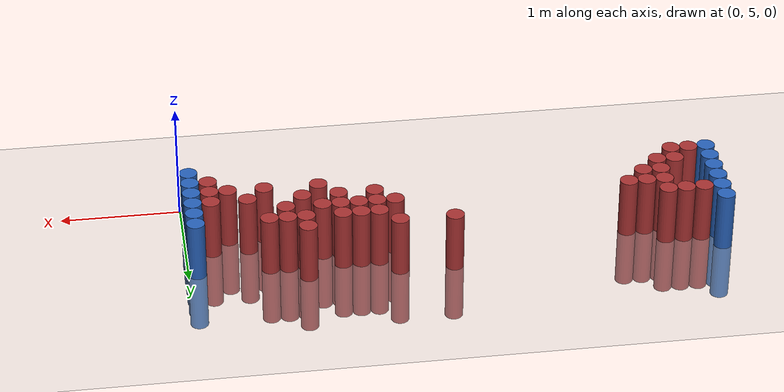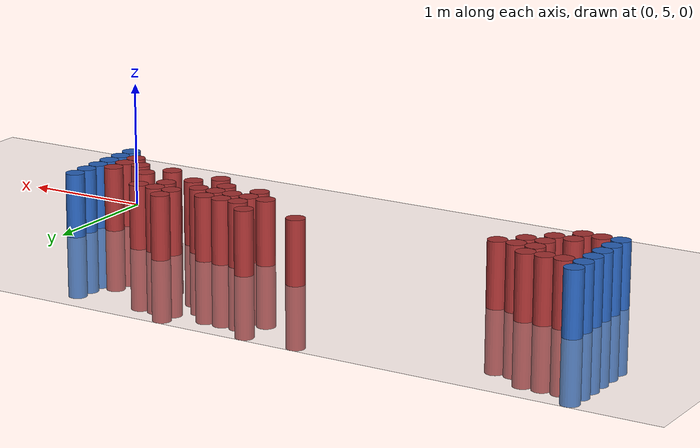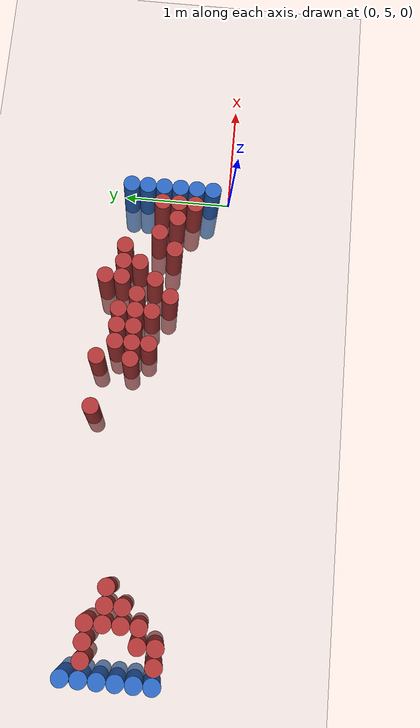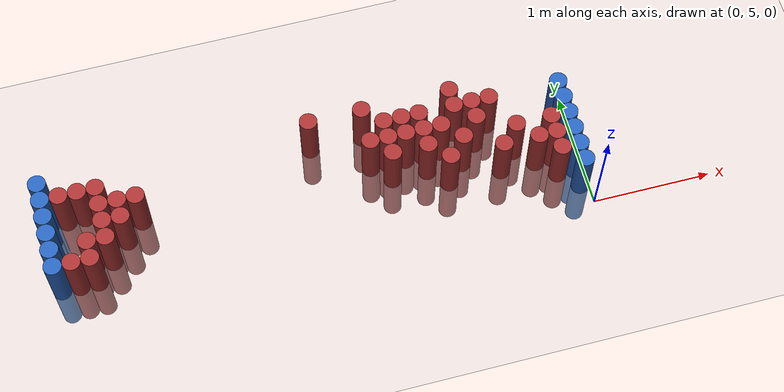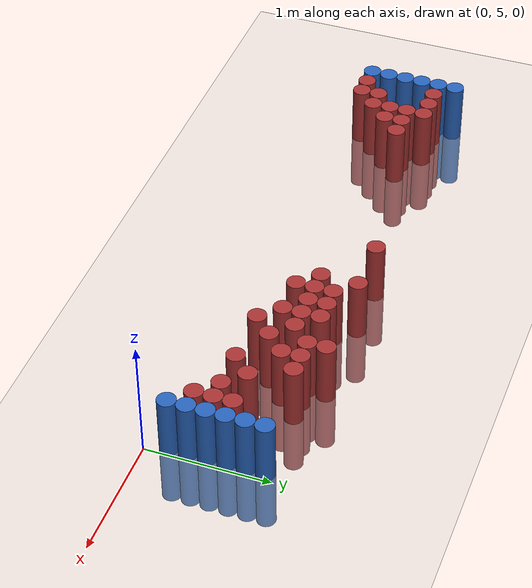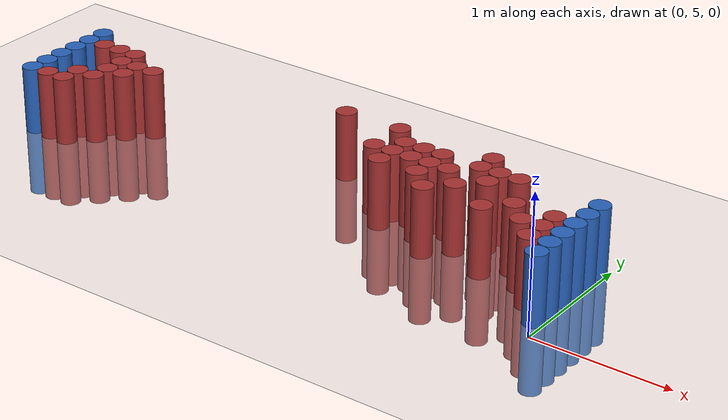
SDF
<sdf version="1.6">
 <world name="default">
  <model name="ground_plane">
   <static>1</static>
   <link name="link">
    <collision name="collision">
     <geometry><plane><normal>0 0 1</normal><size>100 100</size></plane></geometry>
     <surface><friction><ode><mu>100</mu><mu2>50</mu2></ode></friction></surface>
    </collision>
    <visual name="visual">
     <cast_shadows>0</cast_shadows>
     <geometry><plane><normal>0 0 1</normal><size>100 100</size></plane></geometry>
     <material>
      <script><uri>file://media/materials/scripts/gazebo.material</uri><name>Gazebo/Grey</name></script>
     </material>
    </visual>
   </link>
  </model>
  <model name="unit_cylinder_97">
   <static>1</static>
   <pose>-4.425000 5.325000 0.000000 0.000000 0.000000 0.000000</pose>
   <link name="link">
    <inertial>
     <mass>1</mass>
     <inertia><ixx>0.145833</ixx><ixy>0</ixy><ixz>0</ixz><iyy>0.145833</iyy><iyz>0</iyz><izz>0.125</izz></inertia>
    </inertial>
    <collision name="collision">
     <geometry><cylinder><radius>0.075000</radius><length>1</length></cylinder></geometry>
    </collision>
    <visual name="visual">
     <geometry><cylinder><radius>0.075000</radius><length>1</length></cylinder></geometry>
     <material>
      <ambient>0.152000 0.379000 0.720000 1</ambient>
      <diffuse>0.152000 0.379000 0.720000 1</diffuse>
     </material>
     <material>
      <script><name>Gazebo/Grey</name><uri>file://media/materials/scripts/gazebo.material</uri></script>
     </material>
    </visual>
   </link>
  </model>
  <model name="unit_cylinder_98">
   <static>1</static>
   <pose>-4.425000 5.475000 0.000000 0.000000 0.000000 0.000000</pose>
   <link name="link">
    <inertial>
     <mass>1</mass>
     <inertia><ixx>0.145833</ixx><ixy>0</ixy><ixz>0</ixz><iyy>0.145833</iyy><iyz>0</iyz><izz>0.125</izz></inertia>
    </inertial>
    <collision name="collision">
     <geometry><cylinder><radius>0.075000</radius><length>1</length></cylinder></geometry>
    </collision>
    <visual name="visual">
     <geometry><cylinder><radius>0.075000</radius><length>1</length></cylinder></geometry>
     <material>
      <ambient>0.152000 0.379000 0.720000 1</ambient>
      <diffuse>0.152000 0.379000 0.720000 1</diffuse>
     </material>
     <material>
      <script><name>Gazebo/Grey</name><uri>file://media/materials/scripts/gazebo.material</uri></script>
     </material>
    </visual>
   </link>
  </model>
  <model name="unit_cylinder_99">
   <static>1</static>
   <pose>-4.425000 5.625000 0.000000 0.000000 0.000000 0.000000</pose>
   <link name="link">
    <inertial>
     <mass>1</mass>
     <inertia><ixx>0.145833</ixx><ixy>0</ixy><ixz>0</ixz><iyy>0.145833</iyy><iyz>0</iyz><izz>0.125</izz></inertia>
    </inertial>
    <collision name="collision">
     <geometry><cylinder><radius>0.075000</radius><length>1</length></cylinder></geometry>
    </collision>
    <visual name="visual">
     <geometry><cylinder><radius>0.075000</radius><length>1</length></cylinder></geometry>
     <material>
      <ambient>0.152000 0.379000 0.720000 1</ambient>
      <diffuse>0.152000 0.379000 0.720000 1</diffuse>
     </material>
     <material>
      <script><name>Gazebo/Grey</name><uri>file://media/materials/scripts/gazebo.material</uri></script>
     </material>
    </visual>
   </link>
  </model>
  <model name="unit_cylinder_100">
   <static>1</static>
   <pose>-4.425000 5.775000 0.000000 0.000000 0.000000 0.000000</pose>
   <link name="link">
    <inertial>
     <mass>1</mass>
     <inertia><ixx>0.145833</ixx><ixy>0</ixy><ixz>0</ixz><iyy>0.145833</iyy><iyz>0</iyz><izz>0.125</izz></inertia>
    </inertial>
    <collision name="collision">
     <geometry><cylinder><radius>0.075000</radius><length>1</length></cylinder></geometry>
    </collision>
    <visual name="visual">
     <geometry><cylinder><radius>0.075000</radius><length>1</length></cylinder></geometry>
     <material>
      <ambient>0.152000 0.379000 0.720000 1</ambient>
      <diffuse>0.152000 0.379000 0.720000 1</diffuse>
     </material>
     <material>
      <script><name>Gazebo/Grey</name><uri>file://media/materials/scripts/gazebo.material</uri></script>
     </material>
    </visual>
   </link>
  </model>
  <model name="unit_cylinder_101">
   <static>1</static>
   <pose>-4.425000 5.925000 0.000000 0.000000 0.000000 0.000000</pose>
   <link name="link">
    <inertial>
     <mass>1</mass>
     <inertia><ixx>0.145833</ixx><ixy>0</ixy><ixz>0</ixz><iyy>0.145833</iyy><iyz>0</iyz><izz>0.125</izz></inertia>
    </inertial>
    <collision name="collision">
     <geometry><cylinder><radius>0.075000</radius><length>1</length></cylinder></geometry>
    </collision>
    <visual name="visual">
     <geometry><cylinder><radius>0.075000</radius><length>1</length></cylinder></geometry>
     <material>
      <ambient>0.152000 0.379000 0.720000 1</ambient>
      <diffuse>0.152000 0.379000 0.720000 1</diffuse>
     </material>
     <material>
      <script><name>Gazebo/Grey</name><uri>file://media/materials/scripts/gazebo.material</uri></script>
     </material>
    </visual>
   </link>
  </model>
  <model name="unit_cylinder_102">
   <static>1</static>
   <pose>-4.425000 6.075000 0.000000 0.000000 0.000000 0.000000</pose>
   <link name="link">
    <inertial>
     <mass>1</mass>
     <inertia><ixx>0.145833</ixx><ixy>0</ixy><ixz>0</ixz><iyy>0.145833</iyy><iyz>0</iyz><izz>0.125</izz></inertia>
    </inertial>
    <collision name="collision">
     <geometry><cylinder><radius>0.075000</radius><length>1</length></cylinder></geometry>
    </collision>
    <visual name="visual">
     <geometry><cylinder><radius>0.075000</radius><length>1</length></cylinder></geometry>
     <material>
      <ambient>0.152000 0.379000 0.720000 1</ambient>
      <diffuse>0.152000 0.379000 0.720000 1</diffuse>
     </material>
     <material>
      <script><name>Gazebo/Grey</name><uri>file://media/materials/scripts/gazebo.material</uri></script>
     </material>
    </visual>
   </link>
  </model>
  <model name="unit_cylinder_126">
   <static>1</static>
   <pose>-4.275000 5.325000 0.000000 0.000000 0.000000 0.000000</pose>
   <link name="link">
    <inertial>
     <mass>1</mass>
     <inertia><ixx>0.145833</ixx><ixy>0</ixy><ixz>0</ixz><iyy>0.145833</iyy><iyz>0</iyz><izz>0.125</izz></inertia>
    </inertial>
    <collision name="collision">
     <geometry><cylinder><radius>0.075000</radius><length>1</length></cylinder></geometry>
    </collision>
    <visual name="visual">
     <geometry><cylinder><radius>0.075000</radius><length>1</length></cylinder></geometry>
     <material>
      <ambient>0.648000 0.192000 0.192000 1</ambient>
      <diffuse>0.648000 0.192000 0.192000 1</diffuse>
     </material>
     <material>
      <script><name>Gazebo/Grey</name><uri>file://media/materials/scripts/gazebo.material</uri></script>
     </material>
    </visual>
   </link>
  </model>
  <model name="unit_cylinder_127">
   <static>1</static>
   <pose>-4.275000 5.925000 0.000000 0.000000 0.000000 0.000000</pose>
   <link name="link">
    <inertial>
     <mass>1</mass>
     <inertia><ixx>0.145833</ixx><ixy>0</ixy><ixz>0</ixz><iyy>0.145833</iyy><iyz>0</iyz><izz>0.125</izz></inertia>
    </inertial>
    <collision name="collision">
     <geometry><cylinder><radius>0.075000</radius><length>1</length></cylinder></geometry>
    </collision>
    <visual name="visual">
     <geometry><cylinder><radius>0.075000</radius><length>1</length></cylinder></geometry>
     <material>
      <ambient>0.648000 0.192000 0.192000 1</ambient>
      <diffuse>0.648000 0.192000 0.192000 1</diffuse>
     </material>
     <material>
      <script><name>Gazebo/Grey</name><uri>file://media/materials/scripts/gazebo.material</uri></script>
     </material>
    </visual>
   </link>
  </model>
  <model name="unit_cylinder_141">
   <static>1</static>
   <pose>-4.125000 5.325000 0.000000 0.000000 0.000000 0.000000</pose>
   <link name="link">
    <inertial>
     <mass>1</mass>
     <inertia><ixx>0.145833</ixx><ixy>0</ixy><ixz>0</ixz><iyy>0.145833</iyy><iyz>0</iyz><izz>0.125</izz></inertia>
    </inertial>
    <collision name="collision">
     <geometry><cylinder><radius>0.075000</radius><length>1</length></cylinder></geometry>
    </collision>
    <visual name="visual">
     <geometry><cylinder><radius>0.075000</radius><length>1</length></cylinder></geometry>
     <material>
      <ambient>0.648000 0.192000 0.192000 1</ambient>
      <diffuse>0.648000 0.192000 0.192000 1</diffuse>
     </material>
     <material>
      <script><name>Gazebo/Grey</name><uri>file://media/materials/scripts/gazebo.material</uri></script>
     </material>
    </visual>
   </link>
  </model>
  <model name="unit_cylinder_142">
   <static>1</static>
   <pose>-4.125000 5.475000 0.000000 0.000000 0.000000 0.000000</pose>
   <link name="link">
    <inertial>
     <mass>1</mass>
     <inertia><ixx>0.145833</ixx><ixy>0</ixy><ixz>0</ixz><iyy>0.145833</iyy><iyz>0</iyz><izz>0.125</izz></inertia>
    </inertial>
    <collision name="collision">
     <geometry><cylinder><radius>0.075000</radius><length>1</length></cylinder></geometry>
    </collision>
    <visual name="visual">
     <geometry><cylinder><radius>0.075000</radius><length>1</length></cylinder></geometry>
     <material>
      <ambient>0.648000 0.192000 0.192000 1</ambient>
      <diffuse>0.648000 0.192000 0.192000 1</diffuse>
     </material>
     <material>
      <script><name>Gazebo/Grey</name><uri>file://media/materials/scripts/gazebo.material</uri></script>
     </material>
    </visual>
   </link>
  </model>
  <model name="unit_cylinder_143">
   <static>1</static>
   <pose>-4.125000 5.925000 0.000000 0.000000 0.000000 0.000000</pose>
   <link name="link">
    <inertial>
     <mass>1</mass>
     <inertia><ixx>0.145833</ixx><ixy>0</ixy><ixz>0</ixz><iyy>0.145833</iyy><iyz>0</iyz><izz>0.125</izz></inertia>
    </inertial>
    <collision name="collision">
     <geometry><cylinder><radius>0.075000</radius><length>1</length></cylinder></geometry>
    </collision>
    <visual name="visual">
     <geometry><cylinder><radius>0.075000</radius><length>1</length></cylinder></geometry>
     <material>
      <ambient>0.648000 0.192000 0.192000 1</ambient>
      <diffuse>0.648000 0.192000 0.192000 1</diffuse>
     </material>
     <material>
      <script><name>Gazebo/Grey</name><uri>file://media/materials/scripts/gazebo.material</uri></script>
     </material>
    </visual>
   </link>
  </model>
  <model name="unit_cylinder_151">
   <static>1</static>
   <pose>-3.975000 5.475000 0.000000 0.000000 0.000000 0.000000</pose>
   <link name="link">
    <inertial>
     <mass>1</mass>
     <inertia><ixx>0.145833</ixx><ixy>0</ixy><ixz>0</ixz><iyy>0.145833</iyy><iyz>0</iyz><izz>0.125</izz></inertia>
    </inertial>
    <collision name="collision">
     <geometry><cylinder><radius>0.075000</radius><length>1</length></cylinder></geometry>
    </collision>
    <visual name="visual">
     <geometry><cylinder><radius>0.075000</radius><length>1</length></cylinder></geometry>
     <material>
      <ambient>0.648000 0.192000 0.192000 1</ambient>
      <diffuse>0.648000 0.192000 0.192000 1</diffuse>
     </material>
     <material>
      <script><name>Gazebo/Grey</name><uri>file://media/materials/scripts/gazebo.material</uri></script>
     </material>
    </visual>
   </link>
  </model>
  <model name="unit_cylinder_152">
   <static>1</static>
   <pose>-3.975000 5.625000 0.000000 0.000000 0.000000 0.000000</pose>
   <link name="link">
    <inertial>
     <mass>1</mass>
     <inertia><ixx>0.145833</ixx><ixy>0</ixy><ixz>0</ixz><iyy>0.145833</iyy><iyz>0</iyz><izz>0.125</izz></inertia>
    </inertial>
    <collision name="collision">
     <geometry><cylinder><radius>0.075000</radius><length>1</length></cylinder></geometry>
    </collision>
    <visual name="visual">
     <geometry><cylinder><radius>0.075000</radius><length>1</length></cylinder></geometry>
     <material>
      <ambient>0.648000 0.192000 0.192000 1</ambient>
      <diffuse>0.648000 0.192000 0.192000 1</diffuse>
     </material>
     <material>
      <script><name>Gazebo/Grey</name><uri>file://media/materials/scripts/gazebo.material</uri></script>
     </material>
    </visual>
   </link>
  </model>
  <model name="unit_cylinder_153">
   <static>1</static>
   <pose>-3.975000 5.775000 0.000000 0.000000 0.000000 0.000000</pose>
   <link name="link">
    <inertial>
     <mass>1</mass>
     <inertia><ixx>0.145833</ixx><ixy>0</ixy><ixz>0</ixz><iyy>0.145833</iyy><iyz>0</iyz><izz>0.125</izz></inertia>
    </inertial>
    <collision name="collision">
     <geometry><cylinder><radius>0.075000</radius><length>1</length></cylinder></geometry>
    </collision>
    <visual name="visual">
     <geometry><cylinder><radius>0.075000</radius><length>1</length></cylinder></geometry>
     <material>
      <ambient>0.648000 0.192000 0.192000 1</ambient>
      <diffuse>0.648000 0.192000 0.192000 1</diffuse>
     </material>
     <material>
      <script><name>Gazebo/Grey</name><uri>file://media/materials/scripts/gazebo.material</uri></script>
     </material>
    </visual>
   </link>
  </model>
  <model name="unit_cylinder_154">
   <static>1</static>
   <pose>-3.975000 5.925000 0.000000 0.000000 0.000000 0.000000</pose>
   <link name="link">
    <inertial>
     <mass>1</mass>
     <inertia><ixx>0.145833</ixx><ixy>0</ixy><ixz>0</ixz><iyy>0.145833</iyy><iyz>0</iyz><izz>0.125</izz></inertia>
    </inertial>
    <collision name="collision">
     <geometry><cylinder><radius>0.075000</radius><length>1</length></cylinder></geometry>
    </collision>
    <visual name="visual">
     <geometry><cylinder><radius>0.075000</radius><length>1</length></cylinder></geometry>
     <material>
      <ambient>0.648000 0.192000 0.192000 1</ambient>
      <diffuse>0.648000 0.192000 0.192000 1</diffuse>
     </material>
     <material>
      <script><name>Gazebo/Grey</name><uri>file://media/materials/scripts/gazebo.material</uri></script>
     </material>
    </visual>
   </link>
  </model>
  <model name="unit_cylinder_163">
   <static>1</static>
   <pose>-3.825000 5.625000 0.000000 0.000000 0.000000 0.000000</pose>
   <link name="link">
    <inertial>
     <mass>1</mass>
     <inertia><ixx>0.145833</ixx><ixy>0</ixy><ixz>0</ixz><iyy>0.145833</iyy><iyz>0</iyz><izz>0.125</izz></inertia>
    </inertial>
    <collision name="collision">
     <geometry><cylinder><radius>0.075000</radius><length>1</length></cylinder></geometry>
    </collision>
    <visual name="visual">
     <geometry><cylinder><radius>0.075000</radius><length>1</length></cylinder></geometry>
     <material>
      <ambient>0.648000 0.192000 0.192000 1</ambient>
      <diffuse>0.648000 0.192000 0.192000 1</diffuse>
     </material>
     <material>
      <script><name>Gazebo/Grey</name><uri>file://media/materials/scripts/gazebo.material</uri></script>
     </material>
    </visual>
   </link>
  </model>
  <model name="unit_cylinder_164">
   <static>1</static>
   <pose>-3.825000 5.775000 0.000000 0.000000 0.000000 0.000000</pose>
   <link name="link">
    <inertial>
     <mass>1</mass>
     <inertia><ixx>0.145833</ixx><ixy>0</ixy><ixz>0</ixz><iyy>0.145833</iyy><iyz>0</iyz><izz>0.125</izz></inertia>
    </inertial>
    <collision name="collision">
     <geometry><cylinder><radius>0.075000</radius><length>1</length></cylinder></geometry>
    </collision>
    <visual name="visual">
     <geometry><cylinder><radius>0.075000</radius><length>1</length></cylinder></geometry>
     <material>
      <ambient>0.648000 0.192000 0.192000 1</ambient>
      <diffuse>0.648000 0.192000 0.192000 1</diffuse>
     </material>
     <material>
      <script><name>Gazebo/Grey</name><uri>file://media/materials/scripts/gazebo.material</uri></script>
     </material>
    </visual>
   </link>
  </model>
  <model name="unit_cylinder_171">
   <static>1</static>
   <pose>-3.675000 5.775000 0.000000 0.000000 0.000000 0.000000</pose>
   <link name="link">
    <inertial>
     <mass>1</mass>
     <inertia><ixx>0.145833</ixx><ixy>0</ixy><ixz>0</ixz><iyy>0.145833</iyy><iyz>0</iyz><izz>0.125</izz></inertia>
    </inertial>
    <collision name="collision">
     <geometry><cylinder><radius>0.075000</radius><length>1</length></cylinder></geometry>
    </collision>
    <visual name="visual">
     <geometry><cylinder><radius>0.075000</radius><length>1</length></cylinder></geometry>
     <material>
      <ambient>0.648000 0.192000 0.192000 1</ambient>
      <diffuse>0.648000 0.192000 0.192000 1</diffuse>
     </material>
     <material>
      <script><name>Gazebo/Grey</name><uri>file://media/materials/scripts/gazebo.material</uri></script>
     </material>
    </visual>
   </link>
  </model>
  <model name="unit_cylinder_196">
   <static>1</static>
   <pose>-2.175000 6.075000 0.000000 0.000000 0.000000 0.000000</pose>
   <link name="link">
    <inertial>
     <mass>1</mass>
     <inertia><ixx>0.145833</ixx><ixy>0</ixy><ixz>0</ixz><iyy>0.145833</iyy><iyz>0</iyz><izz>0.125</izz></inertia>
    </inertial>
    <collision name="collision">
     <geometry><cylinder><radius>0.075000</radius><length>1</length></cylinder></geometry>
    </collision>
    <visual name="visual">
     <geometry><cylinder><radius>0.075000</radius><length>1</length></cylinder></geometry>
     <material>
      <ambient>0.648000 0.192000 0.192000 1</ambient>
      <diffuse>0.648000 0.192000 0.192000 1</diffuse>
     </material>
     <material>
      <script><name>Gazebo/Grey</name><uri>file://media/materials/scripts/gazebo.material</uri></script>
     </material>
    </visual>
   </link>
  </model>
  <model name="unit_cylinder_225">
   <static>1</static>
   <pose>-1.725000 5.775000 0.000000 0.000000 0.000000 0.000000</pose>
   <link name="link">
    <inertial>
     <mass>1</mass>
     <inertia><ixx>0.145833</ixx><ixy>0</ixy><ixz>0</ixz><iyy>0.145833</iyy><iyz>0</iyz><izz>0.125</izz></inertia>
    </inertial>
    <collision name="collision">
     <geometry><cylinder><radius>0.075000</radius><length>1</length></cylinder></geometry>
    </collision>
    <visual name="visual">
     <geometry><cylinder><radius>0.075000</radius><length>1</length></cylinder></geometry>
     <material>
      <ambient>0.648000 0.192000 0.192000 1</ambient>
      <diffuse>0.648000 0.192000 0.192000 1</diffuse>
     </material>
     <material>
      <script><name>Gazebo/Grey</name><uri>file://media/materials/scripts/gazebo.material</uri></script>
     </material>
    </visual>
   </link>
  </model>
  <model name="unit_cylinder_226">
   <static>1</static>
   <pose>-1.725000 6.075000 0.000000 0.000000 0.000000 0.000000</pose>
   <link name="link">
    <inertial>
     <mass>1</mass>
     <inertia><ixx>0.145833</ixx><ixy>0</ixy><ixz>0</ixz><iyy>0.145833</iyy><iyz>0</iyz><izz>0.125</izz></inertia>
    </inertial>
    <collision name="collision">
     <geometry><cylinder><radius>0.075000</radius><length>1</length></cylinder></geometry>
    </collision>
    <visual name="visual">
     <geometry><cylinder><radius>0.075000</radius><length>1</length></cylinder></geometry>
     <material>
      <ambient>0.648000 0.192000 0.192000 1</ambient>
      <diffuse>0.648000 0.192000 0.192000 1</diffuse>
     </material>
     <material>
      <script><name>Gazebo/Grey</name><uri>file://media/materials/scripts/gazebo.material</uri></script>
     </material>
    </visual>
   </link>
  </model>
  <model name="unit_cylinder_235">
   <static>1</static>
   <pose>-1.575000 5.625000 0.000000 0.000000 0.000000 0.000000</pose>
   <link name="link">
    <inertial>
     <mass>1</mass>
     <inertia><ixx>0.145833</ixx><ixy>0</ixy><ixz>0</ixz><iyy>0.145833</iyy><iyz>0</iyz><izz>0.125</izz></inertia>
    </inertial>
    <collision name="collision">
     <geometry><cylinder><radius>0.075000</radius><length>1</length></cylinder></geometry>
    </collision>
    <visual name="visual">
     <geometry><cylinder><radius>0.075000</radius><length>1</length></cylinder></geometry>
     <material>
      <ambient>0.648000 0.192000 0.192000 1</ambient>
      <diffuse>0.648000 0.192000 0.192000 1</diffuse>
     </material>
     <material>
      <script><name>Gazebo/Grey</name><uri>file://media/materials/scripts/gazebo.material</uri></script>
     </material>
    </visual>
   </link>
  </model>
  <model name="unit_cylinder_236">
   <static>1</static>
   <pose>-1.575000 5.775000 0.000000 0.000000 0.000000 0.000000</pose>
   <link name="link">
    <inertial>
     <mass>1</mass>
     <inertia><ixx>0.145833</ixx><ixy>0</ixy><ixz>0</ixz><iyy>0.145833</iyy><iyz>0</iyz><izz>0.125</izz></inertia>
    </inertial>
    <collision name="collision">
     <geometry><cylinder><radius>0.075000</radius><length>1</length></cylinder></geometry>
    </collision>
    <visual name="visual">
     <geometry><cylinder><radius>0.075000</radius><length>1</length></cylinder></geometry>
     <material>
      <ambient>0.648000 0.192000 0.192000 1</ambient>
      <diffuse>0.648000 0.192000 0.192000 1</diffuse>
     </material>
     <material>
      <script><name>Gazebo/Grey</name><uri>file://media/materials/scripts/gazebo.material</uri></script>
     </material>
    </visual>
   </link>
  </model>
  <model name="unit_cylinder_237">
   <static>1</static>
   <pose>-1.575000 5.925000 0.000000 0.000000 0.000000 0.000000</pose>
   <link name="link">
    <inertial>
     <mass>1</mass>
     <inertia><ixx>0.145833</ixx><ixy>0</ixy><ixz>0</ixz><iyy>0.145833</iyy><iyz>0</iyz><izz>0.125</izz></inertia>
    </inertial>
    <collision name="collision">
     <geometry><cylinder><radius>0.075000</radius><length>1</length></cylinder></geometry>
    </collision>
    <visual name="visual">
     <geometry><cylinder><radius>0.075000</radius><length>1</length></cylinder></geometry>
     <material>
      <ambient>0.648000 0.192000 0.192000 1</ambient>
      <diffuse>0.648000 0.192000 0.192000 1</diffuse>
     </material>
     <material>
      <script><name>Gazebo/Grey</name><uri>file://media/materials/scripts/gazebo.material</uri></script>
     </material>
    </visual>
   </link>
  </model>
  <model name="unit_cylinder_243">
   <static>1</static>
   <pose>-1.425000 5.775000 0.000000 0.000000 0.000000 0.000000</pose>
   <link name="link">
    <inertial>
     <mass>1</mass>
     <inertia><ixx>0.145833</ixx><ixy>0</ixy><ixz>0</ixz><iyy>0.145833</iyy><iyz>0</iyz><izz>0.125</izz></inertia>
    </inertial>
    <collision name="collision">
     <geometry><cylinder><radius>0.075000</radius><length>1</length></cylinder></geometry>
    </collision>
    <visual name="visual">
     <geometry><cylinder><radius>0.075000</radius><length>1</length></cylinder></geometry>
     <material>
      <ambient>0.648000 0.192000 0.192000 1</ambient>
      <diffuse>0.648000 0.192000 0.192000 1</diffuse>
     </material>
     <material>
      <script><name>Gazebo/Grey</name><uri>file://media/materials/scripts/gazebo.material</uri></script>
     </material>
    </visual>
   </link>
  </model>
  <model name="unit_cylinder_244">
   <static>1</static>
   <pose>-1.425000 5.925000 0.000000 0.000000 0.000000 0.000000</pose>
   <link name="link">
    <inertial>
     <mass>1</mass>
     <inertia><ixx>0.145833</ixx><ixy>0</ixy><ixz>0</ixz><iyy>0.145833</iyy><iyz>0</iyz><izz>0.125</izz></inertia>
    </inertial>
    <collision name="collision">
     <geometry><cylinder><radius>0.075000</radius><length>1</length></cylinder></geometry>
    </collision>
    <visual name="visual">
     <geometry><cylinder><radius>0.075000</radius><length>1</length></cylinder></geometry>
     <material>
      <ambient>0.648000 0.192000 0.192000 1</ambient>
      <diffuse>0.648000 0.192000 0.192000 1</diffuse>
     </material>
     <material>
      <script><name>Gazebo/Grey</name><uri>file://media/materials/scripts/gazebo.material</uri></script>
     </material>
    </visual>
   </link>
  </model>
  <model name="unit_cylinder_249">
   <static>1</static>
   <pose>-1.275000 5.625000 0.000000 0.000000 0.000000 0.000000</pose>
   <link name="link">
    <inertial>
     <mass>1</mass>
     <inertia><ixx>0.145833</ixx><ixy>0</ixy><ixz>0</ixz><iyy>0.145833</iyy><iyz>0</iyz><izz>0.125</izz></inertia>
    </inertial>
    <collision name="collision">
     <geometry><cylinder><radius>0.075000</radius><length>1</length></cylinder></geometry>
    </collision>
    <visual name="visual">
     <geometry><cylinder><radius>0.075000</radius><length>1</length></cylinder></geometry>
     <material>
      <ambient>0.648000 0.192000 0.192000 1</ambient>
      <diffuse>0.648000 0.192000 0.192000 1</diffuse>
     </material>
     <material>
      <script><name>Gazebo/Grey</name><uri>file://media/materials/scripts/gazebo.material</uri></script>
     </material>
    </visual>
   </link>
  </model>
  <model name="unit_cylinder_250">
   <static>1</static>
   <pose>-1.275000 5.775000 0.000000 0.000000 0.000000 0.000000</pose>
   <link name="link">
    <inertial>
     <mass>1</mass>
     <inertia><ixx>0.145833</ixx><ixy>0</ixy><ixz>0</ixz><iyy>0.145833</iyy><iyz>0</iyz><izz>0.125</izz></inertia>
    </inertial>
    <collision name="collision">
     <geometry><cylinder><radius>0.075000</radius><length>1</length></cylinder></geometry>
    </collision>
    <visual name="visual">
     <geometry><cylinder><radius>0.075000</radius><length>1</length></cylinder></geometry>
     <material>
      <ambient>0.648000 0.192000 0.192000 1</ambient>
      <diffuse>0.648000 0.192000 0.192000 1</diffuse>
     </material>
     <material>
      <script><name>Gazebo/Grey</name><uri>file://media/materials/scripts/gazebo.material</uri></script>
     </material>
    </visual>
   </link>
  </model>
  <model name="unit_cylinder_251">
   <static>1</static>
   <pose>-1.275000 5.925000 0.000000 0.000000 0.000000 0.000000</pose>
   <link name="link">
    <inertial>
     <mass>1</mass>
     <inertia><ixx>0.145833</ixx><ixy>0</ixy><ixz>0</ixz><iyy>0.145833</iyy><iyz>0</iyz><izz>0.125</izz></inertia>
    </inertial>
    <collision name="collision">
     <geometry><cylinder><radius>0.075000</radius><length>1</length></cylinder></geometry>
    </collision>
    <visual name="visual">
     <geometry><cylinder><radius>0.075000</radius><length>1</length></cylinder></geometry>
     <material>
      <ambient>0.648000 0.192000 0.192000 1</ambient>
      <diffuse>0.648000 0.192000 0.192000 1</diffuse>
     </material>
     <material>
      <script><name>Gazebo/Grey</name><uri>file://media/materials/scripts/gazebo.material</uri></script>
     </material>
    </visual>
   </link>
  </model>
  <model name="unit_cylinder_255">
   <static>1</static>
   <pose>-1.125000 5.475000 0.000000 0.000000 0.000000 0.000000</pose>
   <link name="link">
    <inertial>
     <mass>1</mass>
     <inertia><ixx>0.145833</ixx><ixy>0</ixy><ixz>0</ixz><iyy>0.145833</iyy><iyz>0</iyz><izz>0.125</izz></inertia>
    </inertial>
    <collision name="collision">
     <geometry><cylinder><radius>0.075000</radius><length>1</length></cylinder></geometry>
    </collision>
    <visual name="visual">
     <geometry><cylinder><radius>0.075000</radius><length>1</length></cylinder></geometry>
     <material>
      <ambient>0.648000 0.192000 0.192000 1</ambient>
      <diffuse>0.648000 0.192000 0.192000 1</diffuse>
     </material>
     <material>
      <script><name>Gazebo/Grey</name><uri>file://media/materials/scripts/gazebo.material</uri></script>
     </material>
    </visual>
   </link>
  </model>
  <model name="unit_cylinder_256">
   <static>1</static>
   <pose>-1.125000 5.775000 0.000000 0.000000 0.000000 0.000000</pose>
   <link name="link">
    <inertial>
     <mass>1</mass>
     <inertia><ixx>0.145833</ixx><ixy>0</ixy><ixz>0</ixz><iyy>0.145833</iyy><iyz>0</iyz><izz>0.125</izz></inertia>
    </inertial>
    <collision name="collision">
     <geometry><cylinder><radius>0.075000</radius><length>1</length></cylinder></geometry>
    </collision>
    <visual name="visual">
     <geometry><cylinder><radius>0.075000</radius><length>1</length></cylinder></geometry>
     <material>
      <ambient>0.648000 0.192000 0.192000 1</ambient>
      <diffuse>0.648000 0.192000 0.192000 1</diffuse>
     </material>
     <material>
      <script><name>Gazebo/Grey</name><uri>file://media/materials/scripts/gazebo.material</uri></script>
     </material>
    </visual>
   </link>
  </model>
  <model name="unit_cylinder_260">
   <static>1</static>
   <pose>-0.975000 5.625000 0.000000 0.000000 0.000000 0.000000</pose>
   <link name="link">
    <inertial>
     <mass>1</mass>
     <inertia><ixx>0.145833</ixx><ixy>0</ixy><ixz>0</ixz><iyy>0.145833</iyy><iyz>0</iyz><izz>0.125</izz></inertia>
    </inertial>
    <collision name="collision">
     <geometry><cylinder><radius>0.075000</radius><length>1</length></cylinder></geometry>
    </collision>
    <visual name="visual">
     <geometry><cylinder><radius>0.075000</radius><length>1</length></cylinder></geometry>
     <material>
      <ambient>0.648000 0.192000 0.192000 1</ambient>
      <diffuse>0.648000 0.192000 0.192000 1</diffuse>
     </material>
     <material>
      <script><name>Gazebo/Grey</name><uri>file://media/materials/scripts/gazebo.material</uri></script>
     </material>
    </visual>
   </link>
  </model>
  <model name="unit_cylinder_261">
   <static>1</static>
   <pose>-0.975000 5.925000 0.000000 0.000000 0.000000 0.000000</pose>
   <link name="link">
    <inertial>
     <mass>1</mass>
     <inertia><ixx>0.145833</ixx><ixy>0</ixy><ixz>0</ixz><iyy>0.145833</iyy><iyz>0</iyz><izz>0.125</izz></inertia>
    </inertial>
    <collision name="collision">
     <geometry><cylinder><radius>0.075000</radius><length>1</length></cylinder></geometry>
    </collision>
    <visual name="visual">
     <geometry><cylinder><radius>0.075000</radius><length>1</length></cylinder></geometry>
     <material>
      <ambient>0.648000 0.192000 0.192000 1</ambient>
      <diffuse>0.648000 0.192000 0.192000 1</diffuse>
     </material>
     <material>
      <script><name>Gazebo/Grey</name><uri>file://media/materials/scripts/gazebo.material</uri></script>
     </material>
    </visual>
   </link>
  </model>
  <model name="unit_cylinder_262">
   <static>1</static>
   <pose>-0.975000 6.075000 0.000000 0.000000 0.000000 0.000000</pose>
   <link name="link">
    <inertial>
     <mass>1</mass>
     <inertia><ixx>0.145833</ixx><ixy>0</ixy><ixz>0</ixz><iyy>0.145833</iyy><iyz>0</iyz><izz>0.125</izz></inertia>
    </inertial>
    <collision name="collision">
     <geometry><cylinder><radius>0.075000</radius><length>1</length></cylinder></geometry>
    </collision>
    <visual name="visual">
     <geometry><cylinder><radius>0.075000</radius><length>1</length></cylinder></geometry>
     <material>
      <ambient>0.648000 0.192000 0.192000 1</ambient>
      <diffuse>0.648000 0.192000 0.192000 1</diffuse>
     </material>
     <material>
      <script><name>Gazebo/Grey</name><uri>file://media/materials/scripts/gazebo.material</uri></script>
     </material>
    </visual>
   </link>
  </model>
  <model name="unit_cylinder_266">
   <static>1</static>
   <pose>-0.825000 5.775000 0.000000 0.000000 0.000000 0.000000</pose>
   <link name="link">
    <inertial>
     <mass>1</mass>
     <inertia><ixx>0.145833</ixx><ixy>0</ixy><ixz>0</ixz><iyy>0.145833</iyy><iyz>0</iyz><izz>0.125</izz></inertia>
    </inertial>
    <collision name="collision">
     <geometry><cylinder><radius>0.075000</radius><length>1</length></cylinder></geometry>
    </collision>
    <visual name="visual">
     <geometry><cylinder><radius>0.075000</radius><length>1</length></cylinder></geometry>
     <material>
      <ambient>0.648000 0.192000 0.192000 1</ambient>
      <diffuse>0.648000 0.192000 0.192000 1</diffuse>
     </material>
     <material>
      <script><name>Gazebo/Grey</name><uri>file://media/materials/scripts/gazebo.material</uri></script>
     </material>
    </visual>
   </link>
  </model>
  <model name="unit_cylinder_267">
   <static>1</static>
   <pose>-0.825000 5.925000 0.000000 0.000000 0.000000 0.000000</pose>
   <link name="link">
    <inertial>
     <mass>1</mass>
     <inertia><ixx>0.145833</ixx><ixy>0</ixy><ixz>0</ixz><iyy>0.145833</iyy><iyz>0</iyz><izz>0.125</izz></inertia>
    </inertial>
    <collision name="collision">
     <geometry><cylinder><radius>0.075000</radius><length>1</length></cylinder></geometry>
    </collision>
    <visual name="visual">
     <geometry><cylinder><radius>0.075000</radius><length>1</length></cylinder></geometry>
     <material>
      <ambient>0.648000 0.192000 0.192000 1</ambient>
      <diffuse>0.648000 0.192000 0.192000 1</diffuse>
     </material>
     <material>
      <script><name>Gazebo/Grey</name><uri>file://media/materials/scripts/gazebo.material</uri></script>
     </material>
    </visual>
   </link>
  </model>
  <model name="unit_cylinder_275">
   <static>1</static>
   <pose>-0.675000 5.475000 0.000000 0.000000 0.000000 0.000000</pose>
   <link name="link">
    <inertial>
     <mass>1</mass>
     <inertia><ixx>0.145833</ixx><ixy>0</ixy><ixz>0</ixz><iyy>0.145833</iyy><iyz>0</iyz><izz>0.125</izz></inertia>
    </inertial>
    <collision name="collision">
     <geometry><cylinder><radius>0.075000</radius><length>1</length></cylinder></geometry>
    </collision>
    <visual name="visual">
     <geometry><cylinder><radius>0.075000</radius><length>1</length></cylinder></geometry>
     <material>
      <ambient>0.648000 0.192000 0.192000 1</ambient>
      <diffuse>0.648000 0.192000 0.192000 1</diffuse>
     </material>
     <material>
      <script><name>Gazebo/Grey</name><uri>file://media/materials/scripts/gazebo.material</uri></script>
     </material>
    </visual>
   </link>
  </model>
  <model name="unit_cylinder_276">
   <static>1</static>
   <pose>-0.675000 5.925000 0.000000 0.000000 0.000000 0.000000</pose>
   <link name="link">
    <inertial>
     <mass>1</mass>
     <inertia><ixx>0.145833</ixx><ixy>0</ixy><ixz>0</ixz><iyy>0.145833</iyy><iyz>0</iyz><izz>0.125</izz></inertia>
    </inertial>
    <collision name="collision">
     <geometry><cylinder><radius>0.075000</radius><length>1</length></cylinder></geometry>
    </collision>
    <visual name="visual">
     <geometry><cylinder><radius>0.075000</radius><length>1</length></cylinder></geometry>
     <material>
      <ambient>0.648000 0.192000 0.192000 1</ambient>
      <diffuse>0.648000 0.192000 0.192000 1</diffuse>
     </material>
     <material>
      <script><name>Gazebo/Grey</name><uri>file://media/materials/scripts/gazebo.material</uri></script>
     </material>
    </visual>
   </link>
  </model>
  <model name="unit_cylinder_281">
   <static>1</static>
   <pose>-0.525000 5.625000 0.000000 0.000000 0.000000 0.000000</pose>
   <link name="link">
    <inertial>
     <mass>1</mass>
     <inertia><ixx>0.145833</ixx><ixy>0</ixy><ixz>0</ixz><iyy>0.145833</iyy><iyz>0</iyz><izz>0.125</izz></inertia>
    </inertial>
    <collision name="collision">
     <geometry><cylinder><radius>0.075000</radius><length>1</length></cylinder></geometry>
    </collision>
    <visual name="visual">
     <geometry><cylinder><radius>0.075000</radius><length>1</length></cylinder></geometry>
     <material>
      <ambient>0.648000 0.192000 0.192000 1</ambient>
      <diffuse>0.648000 0.192000 0.192000 1</diffuse>
     </material>
     <material>
      <script><name>Gazebo/Grey</name><uri>file://media/materials/scripts/gazebo.material</uri></script>
     </material>
    </visual>
   </link>
  </model>
  <model name="unit_cylinder_283">
   <static>1</static>
   <pose>-0.375000 5.475000 0.000000 0.000000 0.000000 0.000000</pose>
   <link name="link">
    <inertial>
     <mass>1</mass>
     <inertia><ixx>0.145833</ixx><ixy>0</ixy><ixz>0</ixz><iyy>0.145833</iyy><iyz>0</iyz><izz>0.125</izz></inertia>
    </inertial>
    <collision name="collision">
     <geometry><cylinder><radius>0.075000</radius><length>1</length></cylinder></geometry>
    </collision>
    <visual name="visual">
     <geometry><cylinder><radius>0.075000</radius><length>1</length></cylinder></geometry>
     <material>
      <ambient>0.648000 0.192000 0.192000 1</ambient>
      <diffuse>0.648000 0.192000 0.192000 1</diffuse>
     </material>
     <material>
      <script><name>Gazebo/Grey</name><uri>file://media/materials/scripts/gazebo.material</uri></script>
     </material>
    </visual>
   </link>
  </model>
  <model name="unit_cylinder_293">
   <static>1</static>
   <pose>-0.225000 5.325000 0.000000 0.000000 0.000000 0.000000</pose>
   <link name="link">
    <inertial>
     <mass>1</mass>
     <inertia><ixx>0.145833</ixx><ixy>0</ixy><ixz>0</ixz><iyy>0.145833</iyy><iyz>0</iyz><izz>0.125</izz></inertia>
    </inertial>
    <collision name="collision">
     <geometry><cylinder><radius>0.075000</radius><length>1</length></cylinder></geometry>
    </collision>
    <visual name="visual">
     <geometry><cylinder><radius>0.075000</radius><length>1</length></cylinder></geometry>
     <material>
      <ambient>0.648000 0.192000 0.192000 1</ambient>
      <diffuse>0.648000 0.192000 0.192000 1</diffuse>
     </material>
     <material>
      <script><name>Gazebo/Grey</name><uri>file://media/materials/scripts/gazebo.material</uri></script>
     </material>
    </visual>
   </link>
  </model>
  <model name="unit_cylinder_294">
   <static>1</static>
   <pose>-0.225000 5.475000 0.000000 0.000000 0.000000 0.000000</pose>
   <link name="link">
    <inertial>
     <mass>1</mass>
     <inertia><ixx>0.145833</ixx><ixy>0</ixy><ixz>0</ixz><iyy>0.145833</iyy><iyz>0</iyz><izz>0.125</izz></inertia>
    </inertial>
    <collision name="collision">
     <geometry><cylinder><radius>0.075000</radius><length>1</length></cylinder></geometry>
    </collision>
    <visual name="visual">
     <geometry><cylinder><radius>0.075000</radius><length>1</length></cylinder></geometry>
     <material>
      <ambient>0.648000 0.192000 0.192000 1</ambient>
      <diffuse>0.648000 0.192000 0.192000 1</diffuse>
     </material>
     <material>
      <script><name>Gazebo/Grey</name><uri>file://media/materials/scripts/gazebo.material</uri></script>
     </material>
    </visual>
   </link>
  </model>
  <model name="unit_cylinder_295">
   <static>1</static>
   <pose>-0.225000 5.625000 0.000000 0.000000 0.000000 0.000000</pose>
   <link name="link">
    <inertial>
     <mass>1</mass>
     <inertia><ixx>0.145833</ixx><ixy>0</ixy><ixz>0</ixz><iyy>0.145833</iyy><iyz>0</iyz><izz>0.125</izz></inertia>
    </inertial>
    <collision name="collision">
     <geometry><cylinder><radius>0.075000</radius><length>1</length></cylinder></geometry>
    </collision>
    <visual name="visual">
     <geometry><cylinder><radius>0.075000</radius><length>1</length></cylinder></geometry>
     <material>
      <ambient>0.648000 0.192000 0.192000 1</ambient>
      <diffuse>0.648000 0.192000 0.192000 1</diffuse>
     </material>
     <material>
      <script><name>Gazebo/Grey</name><uri>file://media/materials/scripts/gazebo.material</uri></script>
     </material>
    </visual>
   </link>
  </model>
  <model name="unit_cylinder_311">
   <static>1</static>
   <pose>-0.075000 5.175000 0.000000 0.000000 0.000000 0.000000</pose>
   <link name="link">
    <inertial>
     <mass>1</mass>
     <inertia><ixx>0.145833</ixx><ixy>0</ixy><ixz>0</ixz><iyy>0.145833</iyy><iyz>0</iyz><izz>0.125</izz></inertia>
    </inertial>
    <collision name="collision">
     <geometry><cylinder><radius>0.075000</radius><length>1</length></cylinder></geometry>
    </collision>
    <visual name="visual">
     <geometry><cylinder><radius>0.075000</radius><length>1</length></cylinder></geometry>
     <material>
      <ambient>0.152000 0.379000 0.720000 1</ambient>
      <diffuse>0.152000 0.379000 0.720000 1</diffuse>
     </material>
     <material>
      <script><name>Gazebo/Grey</name><uri>file://media/materials/scripts/gazebo.material</uri></script>
     </material>
    </visual>
   </link>
  </model>
  <model name="unit_cylinder_312">
   <static>1</static>
   <pose>-0.075000 5.325000 0.000000 0.000000 0.000000 0.000000</pose>
   <link name="link">
    <inertial>
     <mass>1</mass>
     <inertia><ixx>0.145833</ixx><ixy>0</ixy><ixz>0</ixz><iyy>0.145833</iyy><iyz>0</iyz><izz>0.125</izz></inertia>
    </inertial>
    <collision name="collision">
     <geometry><cylinder><radius>0.075000</radius><length>1</length></cylinder></geometry>
    </collision>
    <visual name="visual">
     <geometry><cylinder><radius>0.075000</radius><length>1</length></cylinder></geometry>
     <material>
      <ambient>0.152000 0.379000 0.720000 1</ambient>
      <diffuse>0.152000 0.379000 0.720000 1</diffuse>
     </material>
     <material>
      <script><name>Gazebo/Grey</name><uri>file://media/materials/scripts/gazebo.material</uri></script>
     </material>
    </visual>
   </link>
  </model>
  <model name="unit_cylinder_313">
   <static>1</static>
   <pose>-0.075000 5.475000 0.000000 0.000000 0.000000 0.000000</pose>
   <link name="link">
    <inertial>
     <mass>1</mass>
     <inertia><ixx>0.145833</ixx><ixy>0</ixy><ixz>0</ixz><iyy>0.145833</iyy><iyz>0</iyz><izz>0.125</izz></inertia>
    </inertial>
    <collision name="collision">
     <geometry><cylinder><radius>0.075000</radius><length>1</length></cylinder></geometry>
    </collision>
    <visual name="visual">
     <geometry><cylinder><radius>0.075000</radius><length>1</length></cylinder></geometry>
     <material>
      <ambient>0.152000 0.379000 0.720000 1</ambient>
      <diffuse>0.152000 0.379000 0.720000 1</diffuse>
     </material>
     <material>
      <script><name>Gazebo/Grey</name><uri>file://media/materials/scripts/gazebo.material</uri></script>
     </material>
    </visual>
   </link>
  </model>
  <model name="unit_cylinder_314">
   <static>1</static>
   <pose>-0.075000 5.625000 0.000000 0.000000 0.000000 0.000000</pose>
   <link name="link">
    <inertial>
     <mass>1</mass>
     <inertia><ixx>0.145833</ixx><ixy>0</ixy><ixz>0</ixz><iyy>0.145833</iyy><iyz>0</iyz><izz>0.125</izz></inertia>
    </inertial>
    <collision name="collision">
     <geometry><cylinder><radius>0.075000</radius><length>1</length></cylinder></geometry>
    </collision>
    <visual name="visual">
     <geometry><cylinder><radius>0.075000</radius><length>1</length></cylinder></geometry>
     <material>
      <ambient>0.152000 0.379000 0.720000 1</ambient>
      <diffuse>0.152000 0.379000 0.720000 1</diffuse>
     </material>
     <material>
      <script><name>Gazebo/Grey</name><uri>file://media/materials/scripts/gazebo.material</uri></script>
     </material>
    </visual>
   </link>
  </model>
  <model name="unit_cylinder_315">
   <static>1</static>
   <pose>-0.075000 5.775000 0.000000 0.000000 0.000000 0.000000</pose>
   <link name="link">
    <inertial>
     <mass>1</mass>
     <inertia><ixx>0.145833</ixx><ixy>0</ixy><ixz>0</ixz><iyy>0.145833</iyy><iyz>0</iyz><izz>0.125</izz></inertia>
    </inertial>
    <collision name="collision">
     <geometry><cylinder><radius>0.075000</radius><length>1</length></cylinder></geometry>
    </collision>
    <visual name="visual">
     <geometry><cylinder><radius>0.075000</radius><length>1</length></cylinder></geometry>
     <material>
      <ambient>0.152000 0.379000 0.720000 1</ambient>
      <diffuse>0.152000 0.379000 0.720000 1</diffuse>
     </material>
     <material>
      <script><name>Gazebo/Grey</name><uri>file://media/materials/scripts/gazebo.material</uri></script>
     </material>
    </visual>
   </link>
  </model>
  <model name="unit_cylinder_316">
   <static>1</static>
   <pose>-0.075000 5.925000 0.000000 0.000000 0.000000 0.000000</pose>
   <link name="link">
    <inertial>
     <mass>1</mass>
     <inertia><ixx>0.145833</ixx><ixy>0</ixy><ixz>0</ixz><iyy>0.145833</iyy><iyz>0</iyz><izz>0.125</izz></inertia>
    </inertial>
    <collision name="collision">
     <geometry><cylinder><radius>0.075000</radius><length>1</length></cylinder></geometry>
    </collision>
    <visual name="visual">
     <geometry><cylinder><radius>0.075000</radius><length>1</length></cylinder></geometry>
     <material>
      <ambient>0.152000 0.379000 0.720000 1</ambient>
      <diffuse>0.152000 0.379000 0.720000 1</diffuse>
     </material>
     <material>
      <script><name>Gazebo/Grey</name><uri>file://media/materials/scripts/gazebo.material</uri></script>
     </material>
    </visual>
   </link>
  </model>
 </world>
</sdf>
